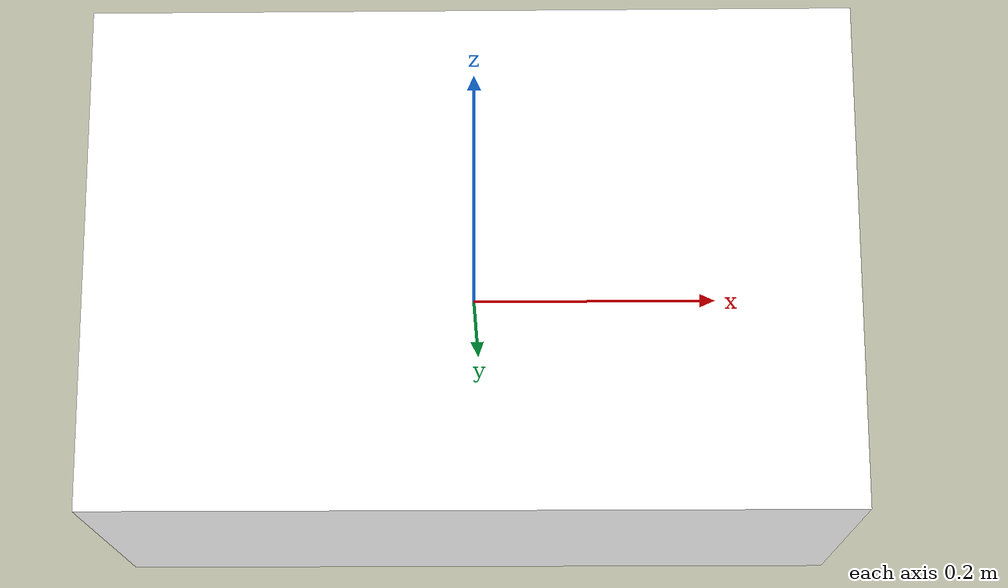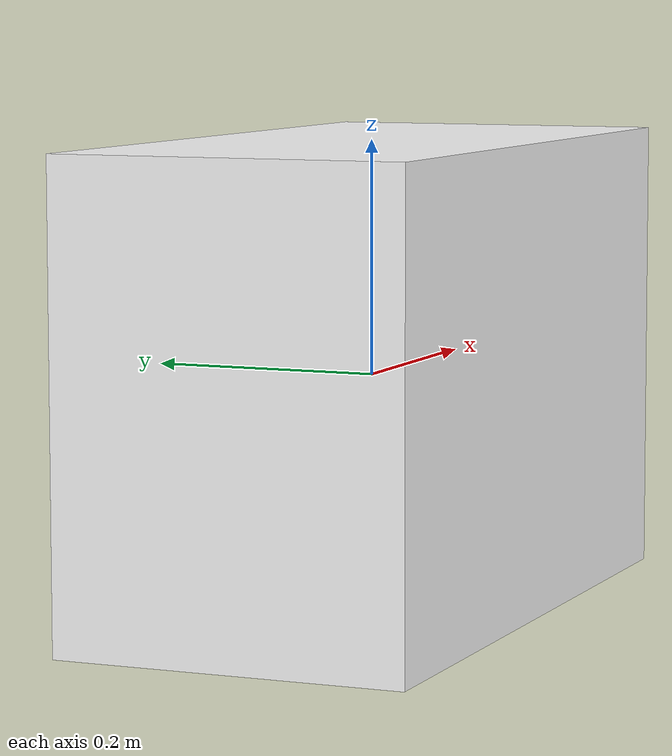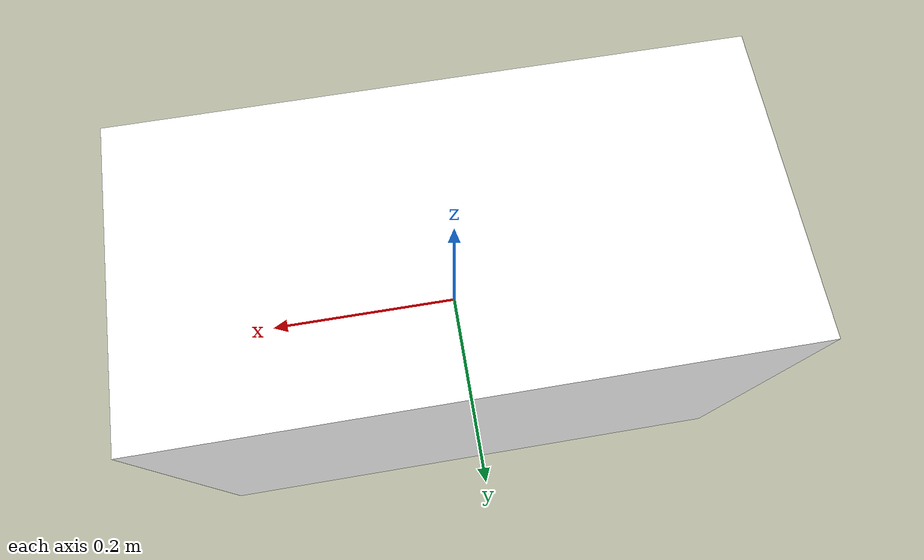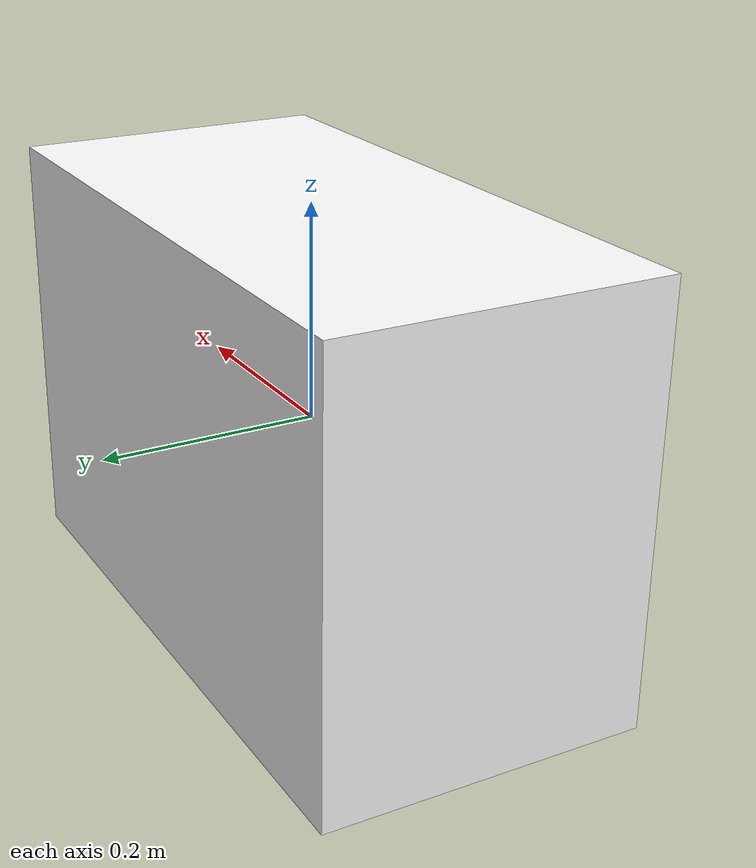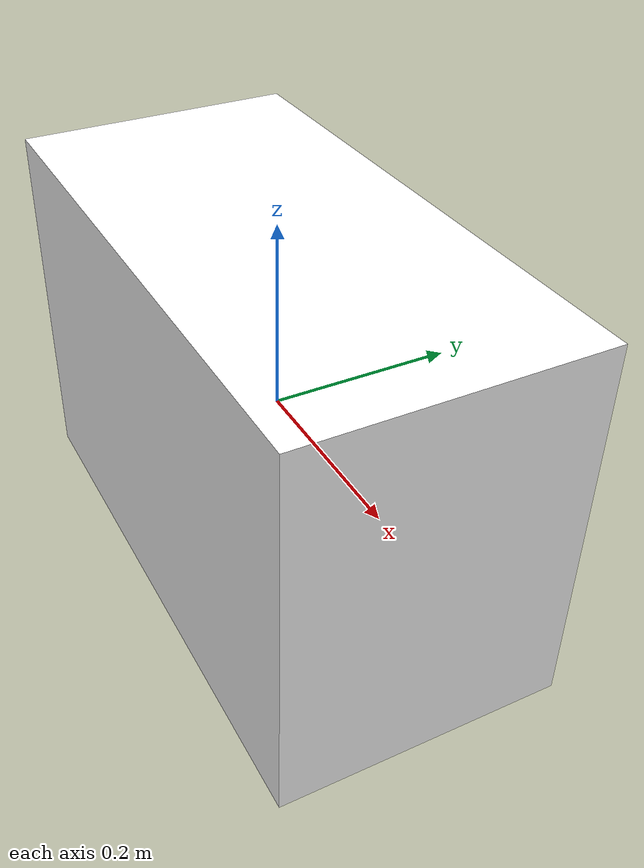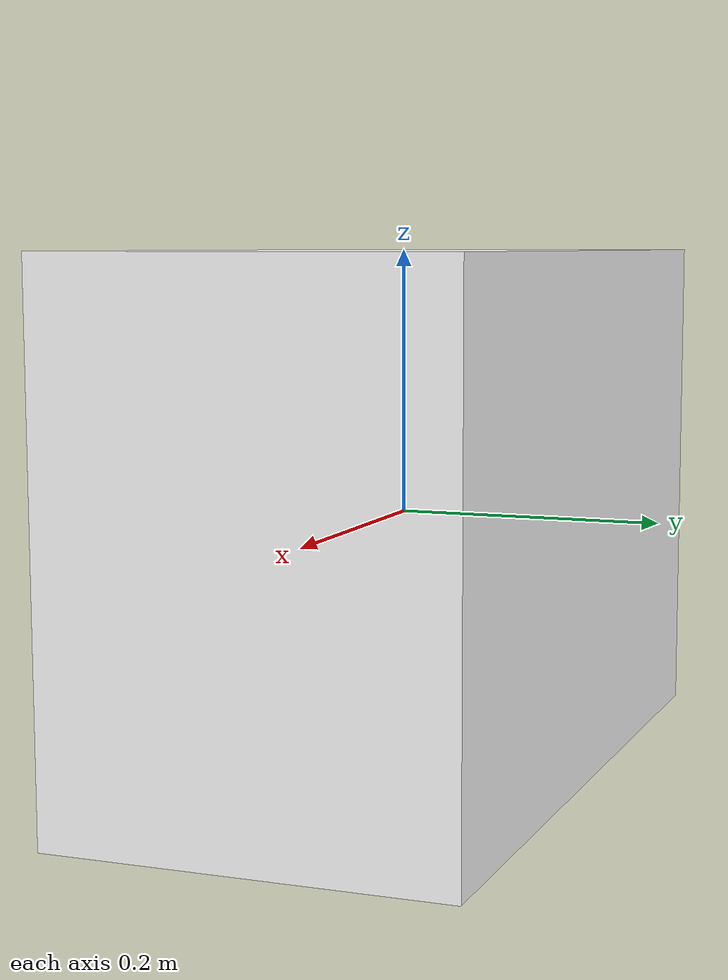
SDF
<?xml version="1.0" ?>
<sdf version="1.9">
    <model name="stall_chicken">
        <static>true</static>
        <link name="link">
            <collision name="col">
                <geometry><box><size>0.6 0.3 0.4</size></box></geometry>
            </collision>
            <visual name="vis">
                <geometry><box><size>0.6 0.3 0.4</size></box></geometry>
                <material>
                    <ambient>1 1 1 1</ambient>
                    <diffuse>1 1 1 1</diffuse>
                    <specular>0 0 0 1</specular>
                    <pbr>
                        <metal>
                            <albedo_map>model://stall_chicken/materials/textures/cookdokoochicken.png</albedo_map>
                            <roughness>1.0</roughness>
                            <metalness>0.0</metalness>
                        </metal>
                    </pbr>
                </material>
            </visual>
        </link>
    </model>
</sdf>
